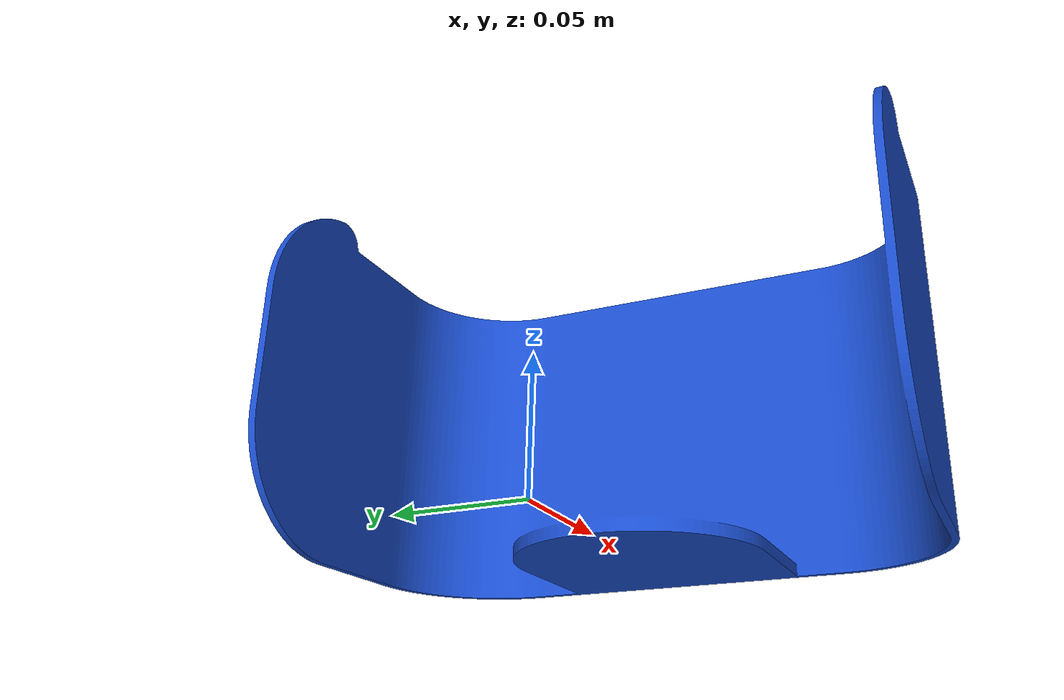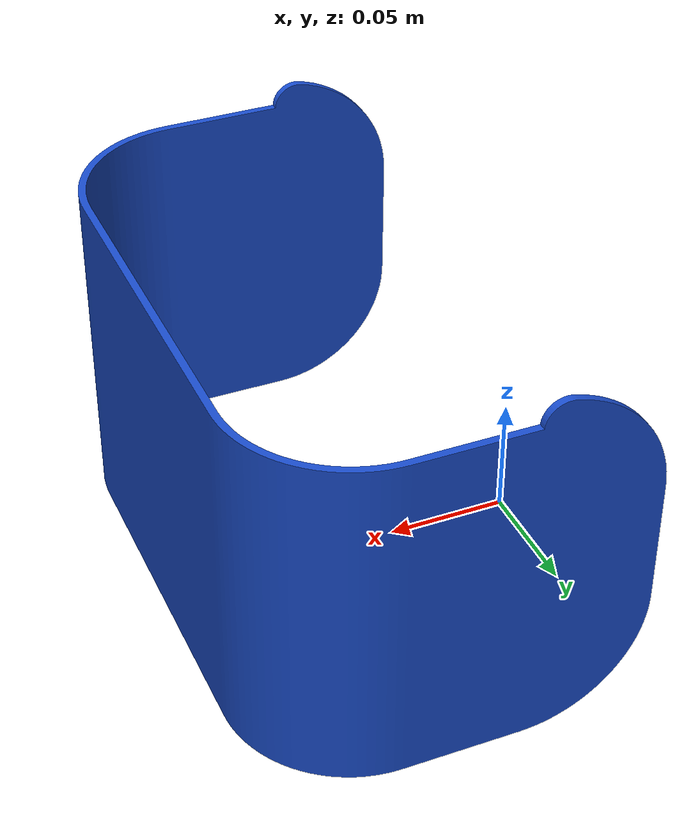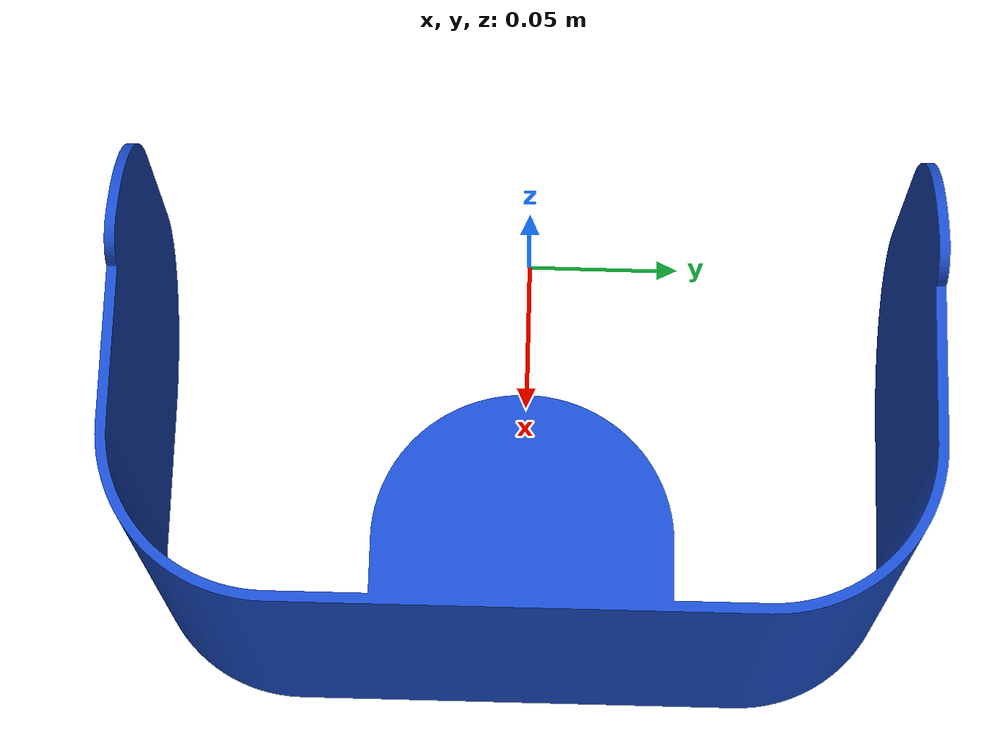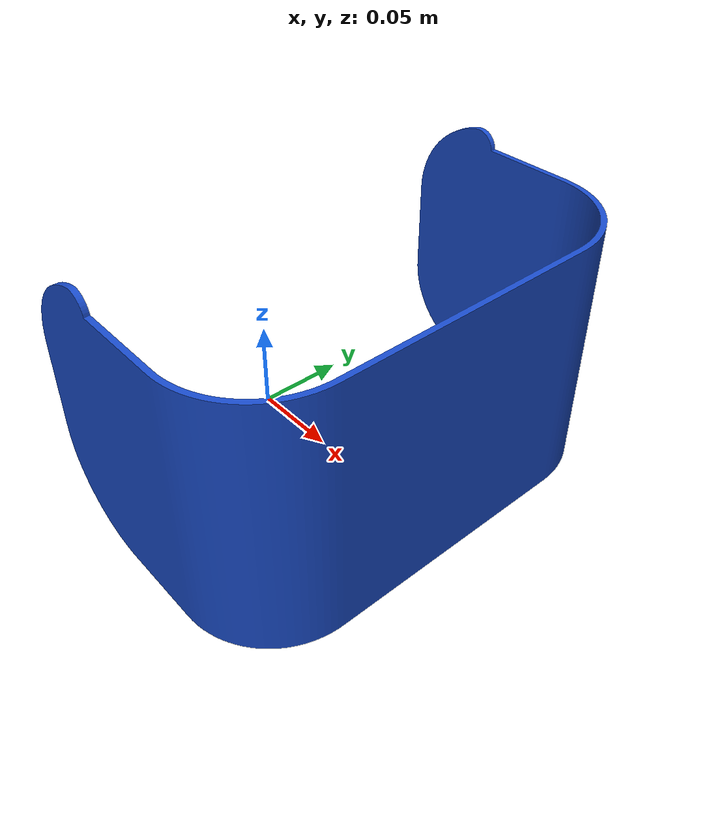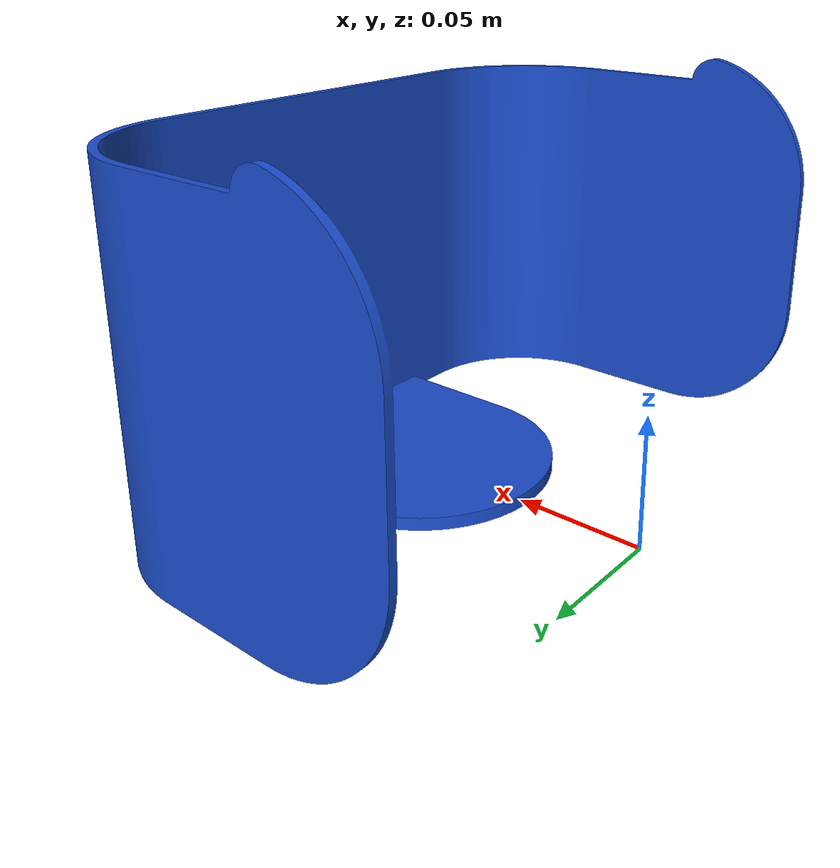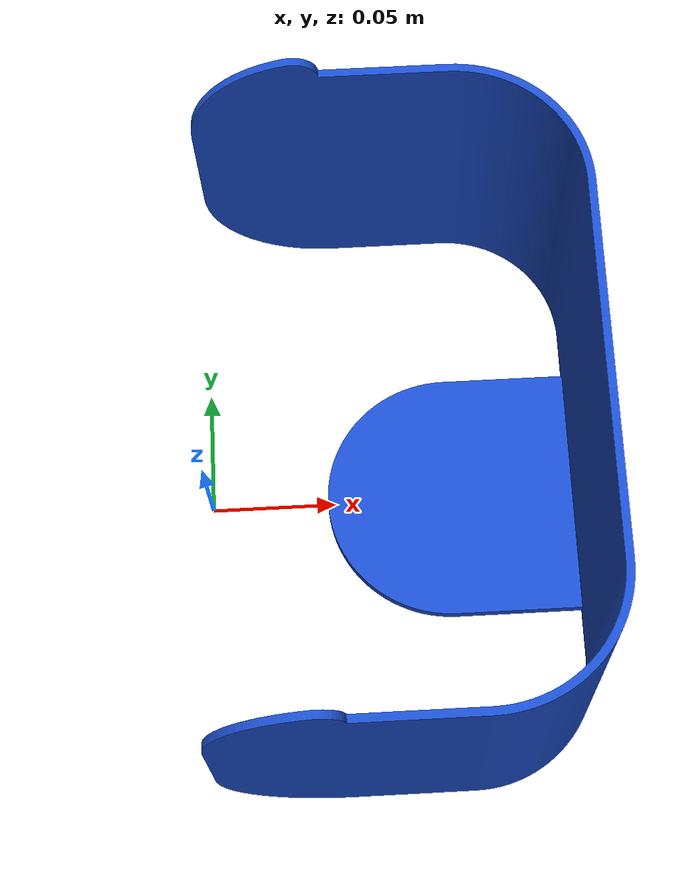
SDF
<?xml version="1.0" ?>
<sdf version="1.6">
  <model name="vegabot_dock">
    <link name="link">
      <inertial>
        <mass>1000</mass>
        <inertia>
          <ixx>840083.33</ixx>
          <ixy>0</ixy>
          <ixz>0</ixz>
          <iyy>475500.0</iyy>
          <iyz>0</iyz>
          <izz>1302083.33</izz>
        </inertia>
      </inertial>
      <collision name="collision">
        <geometry>
          <mesh>
            <uri>model://vegabot_dock/meshes/vegabot_dock.stl</uri>
            <scale>0.001 0.001 0.001</scale>
          </mesh>
        </geometry>
		<surface>
          <friction>
            <ode>
              <mu>0.5</mu>
              <mu2>0.5</mu2>
              <fdir1>0 0 0</fdir1>
              <slip1>0</slip1>
              <slip2>0</slip2>
            </ode>
        </friction>
          </surface>
      </collision>
      <visual name="visual">
	    <geometry>
          <mesh>
            <uri>model://vegabot_dock/meshes/vegabot_dock.stl</uri>
            <scale>0.001 0.001 0.001</scale>
          </mesh>
        </geometry>
        <material>
          <ambient>0.1 0.2 0.6 1.0</ambient>   <!-- Soft blue ambient -->
          <diffuse>0.1 0.3 0.8 1.0</diffuse>   <!-- Strong blue diffuse -->
          <specular>0.3 0.3 0.3 1.0</specular> <!-- Neutral specular highlight -->
          <emissive>0.0 0.0 0.0 1.0</emissive> <!-- No emissive -->
        </material>
      <meta> <layer> 2 </layer></meta>
</visual>
    </link>
<static>1</static>
  </model>
</sdf>
